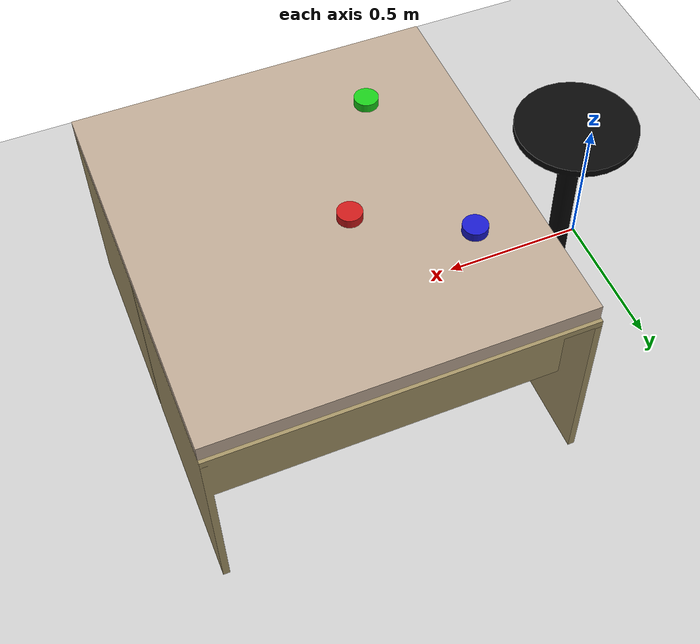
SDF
<sdf version="1.4">
 <world name="two_arm_setup.world">
  <scene><shadows>false</shadows></scene>
  <include><uri>model://ground_plane</uri></include>
  <include><uri>model://sun</uri></include>
  <include>
   <name>lab_table_0</name>
   <static>true</static>
   <pose>1.03288 0.483604 0 0 0 1.5708</pose>
   <uri>model://lab_table</uri>
  </include>
  <include>
   <name>lab_table_1</name>
   <static>true</static>
   <pose>1.03288 -0.176968 0 0 0 1.5708</pose>
   <uri>model://lab_table</uri>
  </include>
  <include>
   <name>wam_holder</name>
   <static>true</static>
   <pose>0.163813 0.137 0 0 0 0</pose>
   <uri>model://wam_holder</uri>
  </include>
  <model name="mattress">
   <pose>1.035987 0.153400 0.6975 0 0 1.5708</pose>
   <static>true</static>
   <link name="link">
    <collision name="collision"><geometry><box><size>1.293 1.195 0.055</size></box></geometry></collision>
    <visual name="visual">
     <geometry><box><size>1.293 1.195 0.055</size></box></geometry>
     <material><ambient>0.074 0.066  0.058 1</ambient><diffuse>0.74 0.66 0.58 1</diffuse></material>
    </visual>
   </link>
  </model>
  <include><name>red_disk</name><pose>0.97 0.22 0.74 0 0 0</pose><uri>model://red_disk</uri></include>
  <include><name>blue_disk</name><pose>0.65 0.41 0.74 0 0 0</pose><uri>model://blue_disk</uri></include>
  <include><name>green_disk</name><pose>0.74 -0.21 0.74 0 0 0</pose><uri>model://green_disk</uri></include>
 </world>
</sdf>

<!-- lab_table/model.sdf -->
<sdf version="1.5">
  <model name="lab_table">
    <static>true</static>
    <link name="link">
    <gravity>true</gravity>
      <inertial>
        <pose>0.0 0.0 0.0 0 0 0</pose>
        <mass>7.000</mass>
        <inertia>
          <ixx>0.0001</ixx>
          <ixy>0</ixy>
          <ixz>0</ixz>
          <iyy>0.0001</iyy>
          <iyz>0</iyz>
          <izz>0.0001</izz>
        </inertia>
      </inertial>
      <collision name="collision">
        <pose>0 0 0 0 0 0</pose>
        <geometry>
          <mesh>
            <uri>model://lab_table/meshes/lab_table.dae</uri>
          </mesh>
        </geometry>
        <surface>
          <friction>
            <ode>
              <mu>1.0</mu>
              <mu2>1.0</mu2>
            </ode>
          </friction>
          <contact>
            <ode>
              <kp>10000000.0</kp>
              <kd>1.0</kd>
              <min_depth>0.001</min_depth>
              <max_vel>0.1</max_vel>
            </ode>
          </contact>
        </surface>
      </collision>
      <visual name="visual">
        <pose>0 0 0 0 0 0</pose>
        <geometry>
          <mesh>
            <uri>model://lab_table/meshes/lab_table.dae</uri>
          </mesh>
        </geometry>
      </visual>
    </link>
  </model>
</sdf>

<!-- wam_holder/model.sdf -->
<sdf version="1.5">
  <model name="wam_holder">
    <static>true</static>
    <link name="link">
    <gravity>true</gravity>
      <inertial>
        <pose>0.0 0.0 0.0 0 0 0</pose>
        <mass>4.000</mass>
        <inertia>
          <ixx>0.0001</ixx>
          <ixy>0</ixy>
          <ixz>0</ixz>
          <iyy>0.0001</iyy>
          <iyz>0</iyz>
          <izz>0.0001</izz>
        </inertia>
      </inertial>
      <collision name="collision">
        <pose>0 0 0 0 0 0</pose>
        <geometry>
          <mesh>
            <uri>model://wam_holder/meshes/wam_holder.dae</uri>
          </mesh>
        </geometry>
        <surface>
          <friction>
            <ode>
              <mu>1.0</mu>
              <mu2>1.0</mu2>
            </ode>
          </friction>
          <contact>
            <ode>
              <kp>10000000.0</kp>
              <kd>1.0</kd>
              <min_depth>0.001</min_depth>
              <max_vel>0.1</max_vel>
            </ode>
          </contact>
        </surface>
      </collision>
      <visual name="visual">
        <pose>0 0 0 0 0 0</pose>
        <geometry>
          <mesh>
            <uri>model://wam_holder/meshes/wam_holder.dae</uri>
          </mesh>
        </geometry>
      </visual>
    </link>
  </model>
</sdf>

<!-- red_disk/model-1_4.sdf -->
<sdf version="1.5">
  <model name="red_disk">
    <static>false</static>
    <link name="link">
    <gravity>true</gravity>
      <inertial>
        <pose>0.0 0.0 0.0 0 0 0</pose>
        <mass>0.2</mass>
        <inertia>
          <ixx>0.000001</ixx>
          <ixy>0</ixy>
          <ixz>0</ixz>
          <iyy>0.000001</iyy>
          <iyz>0</iyz>
          <izz>0.000001</izz>
        </inertia>
      </inertial>
      <collision name="collision">
        <pose>0 0 0 0 0 0</pose>
        <geometry>
          <cylinder>
            <radius>0.04</radius>
            <length>0.025</length>
          </cylinder>
        </geometry>
        <surface>
          <friction>
            <ode>
              <mu>1.0</mu>
              <mu2>1.0</mu2>
            </ode>
          </friction>
          <contact>
            <ode>
              <kp>10000000.0</kp>
              <kd>1.0</kd>
              <min_depth>0.001</min_depth>
              <max_vel>0.1</max_vel>
            </ode>
          </contact>
        </surface>
      </collision>
      <visual name="visual">
        <pose>0 0 0 0 0 0</pose>
        <geometry>
          <cylinder>
            <radius>0.04</radius>
            <length>0.03</length>
          </cylinder>
        </geometry>
        <material>
          <ambient>0.08 0.01 0.01 1</ambient>
          <diffuse>0.8 0.1 0.1 1</diffuse>
        </material>
      </visual>
    </link>
  </model>
</sdf>

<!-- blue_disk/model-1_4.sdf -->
<sdf version="1.5">
  <model name="blue_disk">
    <static>false</static>
    <link name="link">
    <gravity>true</gravity>
      <inertial>
        <pose>0.0 0.0 0.0 0 0 0</pose>
        <mass>0.2</mass>
        <inertia>
          <ixx>0.000001</ixx>
          <ixy>0</ixy>
          <ixz>0</ixz>
          <iyy>0.000001</iyy>
          <iyz>0</iyz>
          <izz>0.000001</izz>
        </inertia>
      </inertial>
      <collision name="collision">
        <pose>0 0 0 0 0 0</pose>
        <geometry>
          <cylinder>
            <radius>0.04</radius>
            <length>0.025</length>
          </cylinder>
        </geometry>
        <surface>
          <friction>
            <ode>
              <mu>1.0</mu>
              <mu2>1.0</mu2>
            </ode>
          </friction>
          <contact>
            <ode>
              <kp>10000000.0</kp>
              <kd>1.0</kd>
              <min_depth>0.001</min_depth>
              <max_vel>0.1</max_vel>
            </ode>
          </contact>
        </surface>
      </collision>
      <visual name="visual">
        <pose>0 0 0 0 0 0</pose>
        <geometry>
          <cylinder>
            <radius>0.04</radius>
            <length>0.03</length>
          </cylinder>
        </geometry>
        <material>
          <ambient>0.01 0.01 0.08 1</ambient>
          <diffuse>0.1 0.1 0.8 1</diffuse>
        </material>
      </visual>
    </link>
  </model>
</sdf>

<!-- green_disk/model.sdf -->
<sdf version="1.5">
  <model name="green_disk">
    <static>false</static>
    <link name="link">
    <gravity>true</gravity>
      <inertial>
        <pose>0.0 0.0 0.0 0 0 0</pose>
        <mass>0.2</mass>
        <inertia>
          <ixx>0.000001</ixx>
          <ixy>0</ixy>
          <ixz>0</ixz>
          <iyy>0.000001</iyy>
          <iyz>0</iyz>
          <izz>0.000001</izz>
        </inertia>
      </inertial>
      <collision name="collision">
        <pose>0 0 0 0 0 0</pose>
        <geometry>
          <cylinder>
            <radius>0.04</radius>
            <length>0.025</length>
          </cylinder>
        </geometry>
        <surface>
          <friction>
            <ode>
              <mu>1.0</mu>
              <mu2>1.0</mu2>
            </ode>
          </friction>
          <contact>
            <ode>
              <kp>10000000.0</kp>
              <kd>1.0</kd>
              <min_depth>0.001</min_depth>
              <max_vel>0.1</max_vel>
            </ode>
          </contact>
        </surface>
      </collision>
      <visual name="visual">
        <pose>0 0 0 0 0 0</pose>
        <geometry>
          <cylinder>
            <radius>0.04</radius>
            <length>0.03</length>
          </cylinder>
        </geometry>
        <material>
          <ambient>0.01 0.08 0.01 1</ambient>
          <diffuse>0.1 0.8 0.1 1</diffuse>
        </material>
      </visual>
    </link>
  </model>
</sdf>
